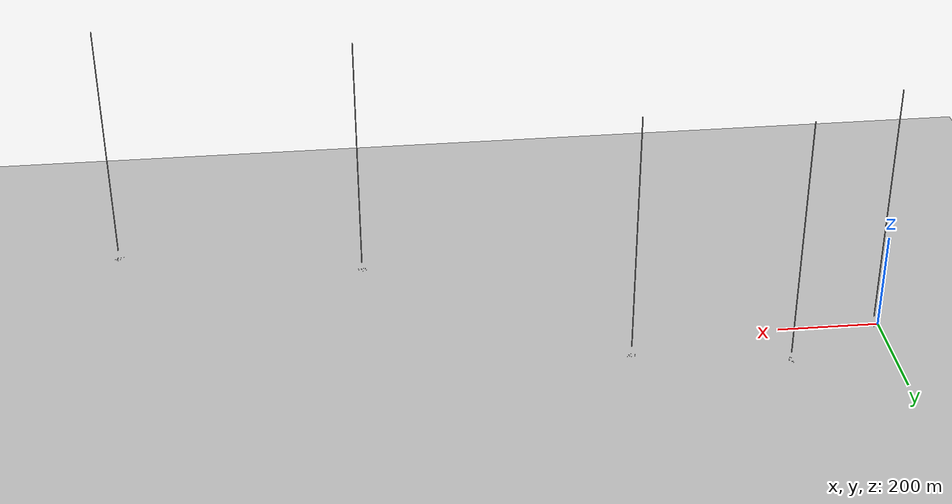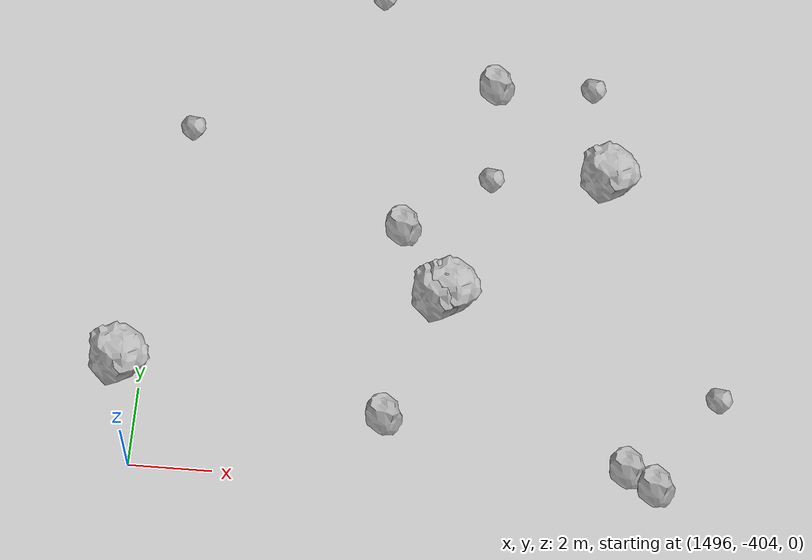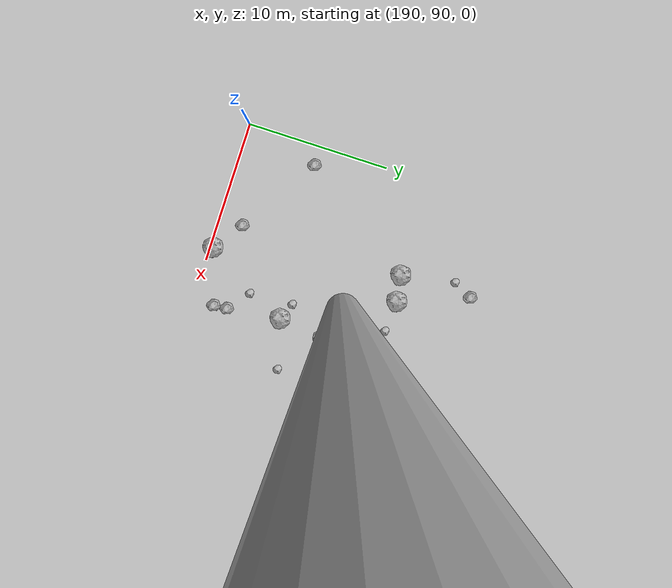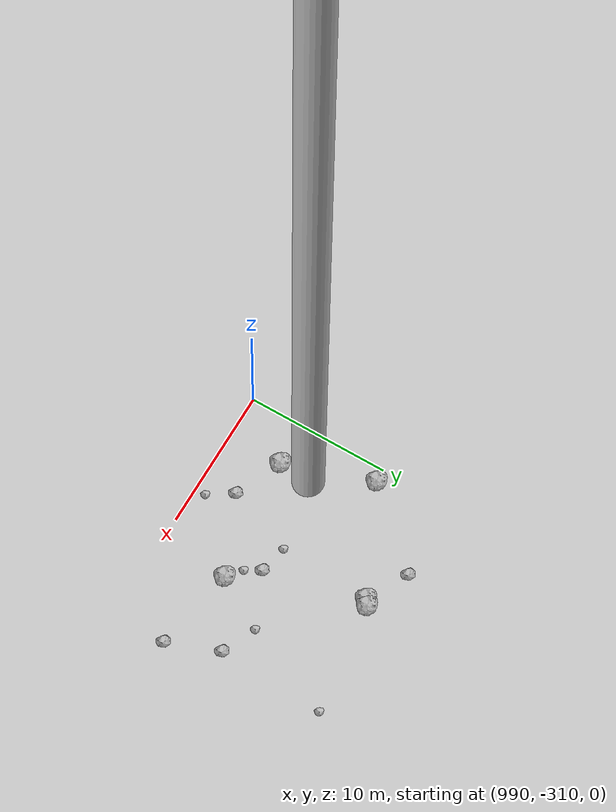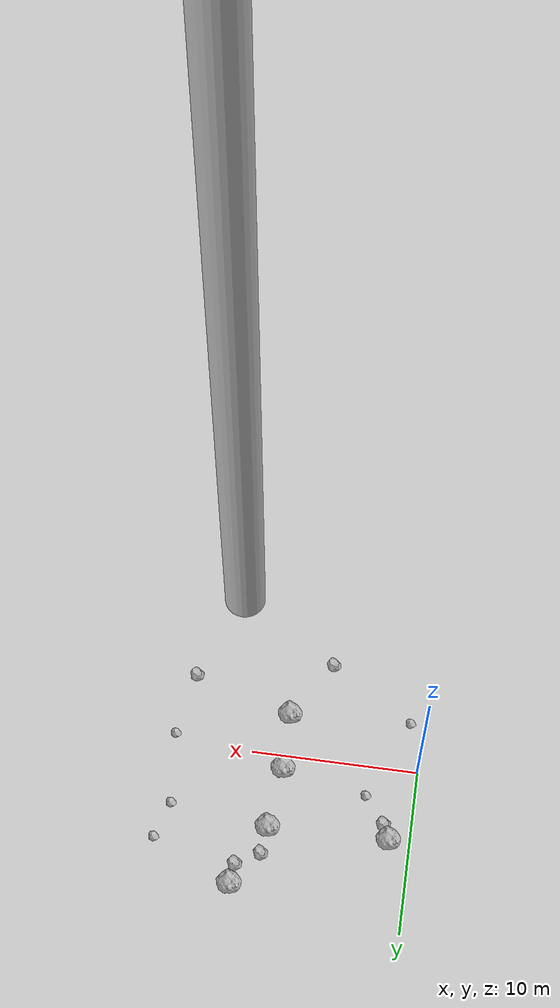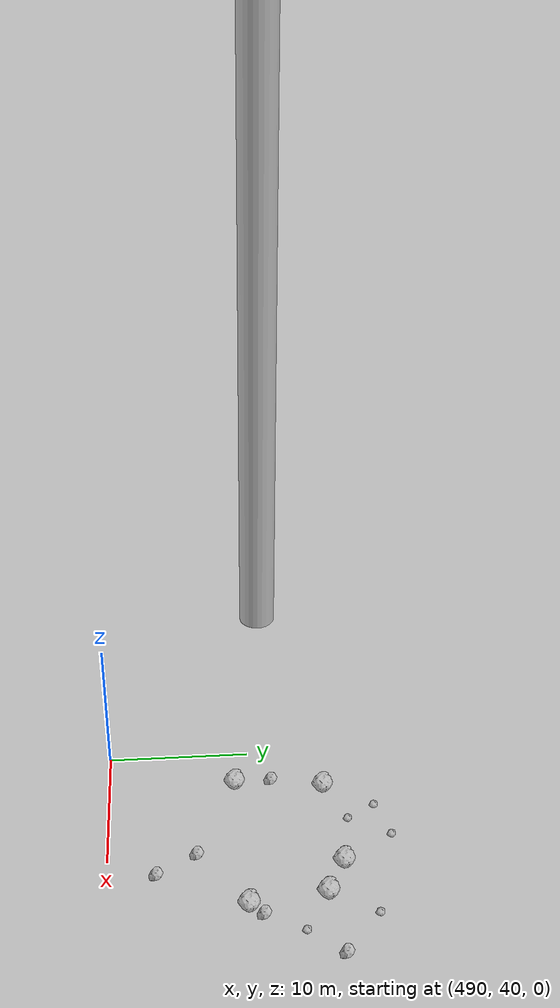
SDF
<?xml version="1.0" ?>
<sdf version="1.6">
  <world name="default">

    <include>
      <uri>model://custom_ground</uri>
    </include>

    <include>
      <uri>model://sun</uri>
    </include>

    <spherical_coordinates>
      <surface_model>EARTH_WGS84</surface_model>
      <latitude_deg>38.161479</latitude_deg>
      <longitude_deg>-122.454630</longitude_deg>
      <elevation>488.0</elevation>
      <heading_deg>90</heading_deg>
    </spherical_coordinates>

    <model name="rock1_0_0">
      <include>
        <uri>model://rock1</uri>
        <pose>10.155490656995251 8.393893590048918 0.5 0 0 0</pose>
      </include>
    </model>
    <model name="rock1_0_1">
      <include>
        <uri>model://rock1</uri>
        <pose>8.091527148625971 -2.6692993977333828 0.5 0 0 0</pose>
      </include>
    </model>
    <model name="rock1_0_2">
      <include>
        <uri>model://rock1</uri>
        <pose>8.0369894921594 0.8845151105397271 0.5 0 0 0</pose>
      </include>
    </model>
    <model name="rock1_0_3">
      <include>
        <uri>model://rock1</uri>
        <pose>8.434773560662832 4.66230148373481 0.5 0 0 0</pose>
      </include>
    </model>
    <model name="rock1_0_4">
      <include>
        <uri>model://rock1</uri>
        <pose>1.2747787272367073 4.487672842149662 0.5 0 0 0</pose>
      </include>
    </model>
    <model name="rock2_0_0">
      <include>
        <uri>model://rock2</uri>
        <pose>8.603139019240702 6.310852218176628 0.3 0 0 0</pose>
      </include>
    </model>
    <model name="rock2_0_1">
      <include>
        <uri>model://rock2</uri>
        <pose>14.1489811920622 -4.542169593200072 0.3 0 0 0</pose>
      </include>
    </model>
    <model name="rock2_0_2">
      <include>
        <uri>model://rock2</uri>
        <pose>10.011243328364582 7.149392479437807 0.3 0 0 0</pose>
      </include>
    </model>
    <model name="rock2_0_3">
      <include>
        <uri>model://rock2</uri>
        <pose>1.6575640791830892 3.5421798221672756 0.3 0 0 0</pose>
      </include>
    </model>
    <model name="rock2_0_4">
      <include>
        <uri>model://rock2</uri>
        <pose>5.8482928857719285 -6.3466763061479226 0.3 0 0 0</pose>
      </include>
    </model>
    <model name="rock3_0_0">
      <include>
        <uri>model://rock3</uri>
        <pose>14.312048951292812 3.8747714369601916 0.2 0 0 0</pose>
      </include>
    </model>
    <model name="rock3_0_1">
      <include>
        <uri>model://rock3</uri>
        <pose>14.97386050454254 6.106106462918156 0.2 0 0 0</pose>
      </include>
    </model>
    <model name="rock3_0_2">
      <include>
        <uri>model://rock3</uri>
        <pose>14.772376376121642 -0.5783622201482252 0.2 0 0 0</pose>
      </include>
    </model>
    <model name="rock3_0_3">
      <include>
        <uri>model://rock3</uri>
        <pose>0.6996136100276584 -3.153009683032053 0.2 0 0 0</pose>
      </include>
    </model>
    <model name="rock3_0_4">
      <include>
        <uri>model://rock3</uri>
        <pose>2.8771703531134896 1.8511570166252902 0.2 0 0 0</pose>
      </include>
    </model>
    <model name="rock1_1_0">
      <include>
        <uri>model://rock1</uri>
        <pose>202.78188321962807 99.49039084142987 0.5 0 0 0</pose>
      </include>
    </model>
    <model name="rock1_1_1">
      <include>
        <uri>model://rock1</uri>
        <pose>196.84023440778756 103.2578745020615 0.5 0 0 0</pose>
      </include>
    </model>
    <model name="rock1_1_2">
      <include>
        <uri>model://rock1</uri>
        <pose>198.66325139184988 103.55398911536253 0.5 0 0 0</pose>
      </include>
    </model>
    <model name="rock1_1_3">
      <include>
        <uri>model://rock1</uri>
        <pose>202.29932244257694 96.20450523776537 0.5 0 0 0</pose>
      </include>
    </model>
    <model name="rock1_1_4">
      <include>
        <uri>model://rock1</uri>
        <pose>199.0211655478731 90.2354160035004 0.5 0 0 0</pose>
      </include>
    </model>
    <model name="rock2_1_0">
      <include>
        <uri>model://rock2</uri>
        <pose>196.7912127500553 108.36366044078669 0.3 0 0 0</pose>
      </include>
    </model>
    <model name="rock2_1_1">
      <include>
        <uri>model://rock2</uri>
        <pose>191.35197359974293 95.1937976866069 0.3 0 0 0</pose>
      </include>
    </model>
    <model name="rock2_1_2">
      <include>
        <uri>model://rock2</uri>
        <pose>202.8189755252163 91.51578403023211 0.3 0 0 0</pose>
      </include>
    </model>
    <model name="rock2_1_3">
      <include>
        <uri>model://rock2</uri>
        <pose>196.89312514104978 91.70836508930844 0.3 0 0 0</pose>
      </include>
    </model>
    <model name="rock2_1_4">
      <include>
        <uri>model://rock2</uri>
        <pose>202.74002798998615 92.45814804681962 0.3 0 0 0</pose>
      </include>
    </model>
    <model name="rock3_1_0">
      <include>
        <uri>model://rock3</uri>
        <pose>201.2532144397183 93.63410110605312 0.2 0 0 0</pose>
      </include>
    </model>
    <model name="rock3_1_1">
      <include>
        <uri>model://rock3</uri>
        <pose>196.110989429347 107.02083394169796 0.2 0 0 0</pose>
      </include>
    </model>
    <model name="rock3_1_2">
      <include>
        <uri>model://rock3</uri>
        <pose>205.69301324966204 97.10004925946394 0.2 0 0 0</pose>
      </include>
    </model>
    <model name="rock3_1_3">
      <include>
        <uri>model://rock3</uri>
        <pose>200.84935125446464 103.41026671867935 0.2 0 0 0</pose>
      </include>
    </model>
    <model name="rock3_1_4">
      <include>
        <uri>model://rock3</uri>
        <pose>201.064748516513 96.68832665419559 0.2 0 0 0</pose>
      </include>
    </model>
    <model name="rock1_2_0">
      <include>
        <uri>model://rock1</uri>
        <pose>503.6637605133033 54.478339584395194 0.5 0 0 0</pose>
      </include>
    </model>
    <model name="rock1_2_1">
      <include>
        <uri>model://rock1</uri>
        <pose>501.0740530725554 55.83433092496597 0.5 0 0 0</pose>
      </include>
    </model>
    <model name="rock1_2_2">
      <include>
        <uri>model://rock1</uri>
        <pose>493.90100634310596 55.15029283520875 0.5 0 0 0</pose>
      </include>
    </model>
    <model name="rock1_2_3">
      <include>
        <uri>model://rock1</uri>
        <pose>493.190140254772 48.91054289116181 0.5 0 0 0</pose>
      </include>
    </model>
    <model name="rock1_2_4">
      <include>
        <uri>model://rock1</uri>
        <pose>504.36731818436357 49.23658005729495 0.5 0 0 0</pose>
      </include>
    </model>
    <model name="rock2_2_0">
      <include>
        <uri>model://rock2</uri>
        <pose>505.17686896706147 50.16524250484411 0.3 0 0 0</pose>
      </include>
    </model>
    <model name="rock2_2_1">
      <include>
        <uri>model://rock2</uri>
        <pose>508.57252241381315 55.07354715573391 0.3 0 0 0</pose>
      </include>
    </model>
    <model name="rock2_2_2">
      <include>
        <uri>model://rock2</uri>
        <pose>501.46872171671345 43.25082216909131 0.3 0 0 0</pose>
      </include>
    </model>
    <model name="rock2_2_3">
      <include>
        <uri>model://rock2</uri>
        <pose>499.82050297163266 46.00217085352 0.3 0 0 0</pose>
      </include>
    </model>
    <model name="rock2_2_4">
      <include>
        <uri>model://rock2</uri>
        <pose>493.0176149209585 51.51265090509648 0.3 0 0 0</pose>
      </include>
    </model>
    <model name="rock3_2_0">
      <include>
        <uri>model://rock3</uri>
        <pose>506.5874200570325 52.7682336218733 0.2 0 0 0</pose>
      </include>
    </model>
    <model name="rock3_2_1">
      <include>
        <uri>model://rock3</uri>
        <pose>495.8832990815007 58.542161456906435 0.2 0 0 0</pose>
      </include>
    </model>
    <model name="rock3_2_2">
      <include>
        <uri>model://rock3</uri>
        <pose>505.4669751382212 57.62144616935666 0.2 0 0 0</pose>
      </include>
    </model>
    <model name="rock3_2_3">
      <include>
        <uri>model://rock3</uri>
        <pose>498.73216408968375 59.376124843220836 0.2 0 0 0</pose>
      </include>
    </model>
    <model name="rock3_2_4">
      <include>
        <uri>model://rock3</uri>
        <pose>497.07936346177604 56.562077324367905 0.2 0 0 0</pose>
      </include>
    </model>
    <model name="rock1_3_0">
      <include>
        <uri>model://rock1</uri>
        <pose>1001.8687929250817 -305.1293634398295 0.5 0 0 0</pose>
      </include>
    </model>
    <model name="rock1_3_1">
      <include>
        <uri>model://rock1</uri>
        <pose>991.0398478773591 -299.9524364469573 0.5 0 0 0</pose>
      </include>
    </model>
    <model name="rock1_3_2">
      <include>
        <uri>model://rock1</uri>
        <pose>998.8739110349338 -296.1411992935682 0.5 0 0 0</pose>
      </include>
    </model>
    <model name="rock1_3_3">
      <include>
        <uri>model://rock1</uri>
        <pose>998.5033244747901 -296.42893243196846 0.5 0 0 0</pose>
      </include>
    </model>
    <model name="rock1_3_4">
      <include>
        <uri>model://rock1</uri>
        <pose>993.1720235854131 -306.0861004850443 0.5 0 0 0</pose>
      </include>
    </model>
    <model name="rock2_3_0">
      <include>
        <uri>model://rock2</uri>
        <pose>1006.2564364028232 -302.6321979754509 0.3 0 0 0</pose>
      </include>
    </model>
    <model name="rock2_3_1">
      <include>
        <uri>model://rock2</uri>
        <pose>1000.143955138838 -303.244158063008 0.3 0 0 0</pose>
      </include>
    </model>
    <model name="rock2_3_2">
      <include>
        <uri>model://rock2</uri>
        <pose>1007.6343451023014 -306.23025085533067 0.3 0 0 0</pose>
      </include>
    </model>
    <model name="rock2_3_3">
      <include>
        <uri>model://rock2</uri>
        <pose>996.3974862764492 -307.5116445293169 0.3 0 0 0</pose>
      </include>
    </model>
    <model name="rock2_3_4">
      <include>
        <uri>model://rock2</uri>
        <pose>995.5505422318017 -294.89878774802247 0.3 0 0 0</pose>
      </include>
    </model>
    <model name="rock3_3_0">
      <include>
        <uri>model://rock3</uri>
        <pose>1000.7521564168132 -304.33401861480695 0.2 0 0 0</pose>
      </include>
    </model>
    <model name="rock3_3_1">
      <include>
        <uri>model://rock3</uri>
        <pose>1006.553755258349 -295.19605776730407 0.2 0 0 0</pose>
      </include>
    </model>
    <model name="rock3_3_2">
      <include>
        <uri>model://rock3</uri>
        <pose>998.1591363021603 -302.8547925754902 0.2 0 0 0</pose>
      </include>
    </model>
    <model name="rock3_3_3">
      <include>
        <uri>model://rock3</uri>
        <pose>997.4959839148572 -309.2420819274356 0.2 0 0 0</pose>
      </include>
    </model>
    <model name="rock3_3_4">
      <include>
        <uri>model://rock3</uri>
        <pose>1003.8735239722292 -301.5961527535835 0.2 0 0 0</pose>
      </include>
    </model>
    <model name="rock1_4_0">
      <include>
        <uri>model://rock1</uri>
        <pose>1506.9499550937114 -395.51308585763735 0.5 0 0 0</pose>
      </include>
    </model>
    <model name="rock1_4_1">
      <include>
        <uri>model://rock1</uri>
        <pose>1490.5948653711998 -401.62426566366065 0.5 0 0 0</pose>
      </include>
    </model>
    <model name="rock1_4_2">
      <include>
        <uri>model://rock1</uri>
        <pose>1503.0680438242046 -399.0874688076617 0.5 0 0 0</pose>
      </include>
    </model>
    <model name="rock1_4_3">
      <include>
        <uri>model://rock1</uri>
        <pose>1495.4942485419638 -401.3593869917928 0.5 0 0 0</pose>
      </include>
    </model>
    <model name="rock1_4_4">
      <include>
        <uri>model://rock1</uri>
        <pose>1503.2761579838884 -398.96952761317107 0.5 0 0 0</pose>
      </include>
    </model>
    <model name="rock2_4_0">
      <include>
        <uri>model://rock2</uri>
        <pose>1501.9690539349958 -397.231094316455 0.3 0 0 0</pose>
      </include>
    </model>
    <model name="rock2_4_1">
      <include>
        <uri>model://rock2</uri>
        <pose>1508.46658597445 -403.6595300950899 0.3 0 0 0</pose>
      </include>
    </model>
    <model name="rock2_4_2">
      <include>
        <uri>model://rock2</uri>
        <pose>1503.9685791664199 -393.07336894816433 0.3 0 0 0</pose>
      </include>
    </model>
    <model name="rock2_4_3">
      <include>
        <uri>model://rock2</uri>
        <pose>1501.9360944415203 -402.3168316613174 0.3 0 0 0</pose>
      </include>
    </model>
    <model name="rock2_4_4">
      <include>
        <uri>model://rock2</uri>
        <pose>1507.7858177028952 -403.2448749727308 0.3 0 0 0</pose>
      </include>
    </model>
    <model name="rock3_4_0">
      <include>
        <uri>model://rock3</uri>
        <pose>1500.9337891801342 -390.6998594100921 0.2 0 0 0</pose>
      </include>
    </model>
    <model name="rock3_4_1">
      <include>
        <uri>model://rock3</uri>
        <pose>1506.3907360481035 -393.0181005097955 0.2 0 0 0</pose>
      </include>
    </model>
    <model name="rock3_4_2">
      <include>
        <uri>model://rock3</uri>
        <pose>1509.860319715383 -401.3208719696805 0.2 0 0 0</pose>
      </include>
    </model>
    <model name="rock3_4_3">
      <include>
        <uri>model://rock3</uri>
        <pose>1496.5033636167725 -394.8661940019821 0.2 0 0 0</pose>
      </include>
    </model>
    <model name="rock3_4_4">
      <include>
        <uri>model://rock3</uri>
        <pose>1504.0227188235306 -395.7660504919539 0.2 0 0 0</pose>
      </include>
    </model>

    <model name="cylinder_1">
      <static>true</static>
      <link name="link">
        <visual name="visual">
          <geometry>
            <cylinder>
              <radius>1</radius>
              <length>500</length>
            </cylinder>
          </geometry>
        </visual>
      </link>
      <pose>10 0 270 0 0 0</pose>
    </model>

    <model name="cylinder_2">
      <static>true</static>
      <link name="link">
        <visual name="visual">
          <geometry>
            <cylinder>
              <radius>1</radius>
              <length>500</length>
            </cylinder>
          </geometry>
        </visual>
      </link>
      <pose>200 100 270 0 0 0</pose>
    </model>

    <model name="cylinder_3">
      <static>true</static>
      <link name="link">
        <visual name="visual">
          <geometry>
            <cylinder>
              <radius>1</radius>
              <length>500</length>
            </cylinder>
          </geometry>
        </visual>
      </link>
      <pose>500 50 270 0 0 0</pose>
    </model>

    <model name="cylinder_4">
      <static>true</static>
      <link name="link">
        <visual name="visual">
          <geometry>
            <cylinder>
              <radius>1</radius>
              <length>500</length>
            </cylinder>
          </geometry>
        </visual>
      </link>
      <pose>1000 -300 270 0 0 0</pose>
    </model>

    <model name="cylinder_5">
      <static>true</static>
      <link name="link">
        <visual name="visual">
          <geometry>
            <cylinder>
              <radius>1</radius>
              <length>500</length>
            </cylinder>
          </geometry>
        </visual>
      </link>
      <pose>1500 -400 270 0 0 0</pose>
    </model>

  </world>
</sdf>

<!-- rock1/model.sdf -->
<sdf version="1.6">
  <model name="rock1">
    <static>true</static> <!-- Set to true if the model should not move -->
    <pose>0 0 0 0 0 0</pose>

    <!--z offset is 0.5 for full scale-->

    <link name="link">
      <collision name="rock1_collision">
        <geometry>
          <mesh>
            <uri>model://meshes/rock1.dae</uri>
          </mesh>
        </geometry>
      </collision>
      <visual name="rock1_visual">
        <geometry>
          <mesh>
            <uri>model://meshes/rock1.dae</uri>
          </mesh>
        </geometry>
        <material>
          <script>
            <uri>model://materials/scripts/sand_pebbles.material</uri>
            <name>custom_ground/Image</name>
          </script>
        </material>
      </visual>
    </link>
  </model>
</sdf>

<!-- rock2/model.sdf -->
<sdf version="1.6">
  <model name="rock2">
    <static>true</static> <!-- Set to true if the model should not move -->
    <pose>0 0 0 0 0 0</pose>

    <!--z offset is 0.3 for full scale-->

    <link name="link">
      <collision name="rock2_collision">
        <geometry>
          <mesh>
            <uri>model://meshes/rock2.dae</uri>
          </mesh>
        </geometry>
      </collision>
      <visual name="rock2_visual">
        <geometry>
          <mesh>
            <uri>model://meshes/rock2.dae</uri>
          </mesh>
        </geometry>
        <material>
          <script>
            <uri>model://materials/scripts/sand_pebbles.material</uri>
            <name>custom_ground/Image</name>
          </script>
        </material>
      </visual>
    </link>
  </model>
</sdf>

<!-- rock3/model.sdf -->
<sdf version="1.6">
  <model name="rock3">
    <static>true</static> <!-- Set to true if the model should not move -->
    <pose>0 0 0 0 0 0</pose>

    <!--z offset is 0.2 for full scale-->

    <link name="link">
      <collision name="rock3_collision">
        <geometry>
          <mesh>
            <uri>model://meshes/rock3.dae</uri>
          </mesh>
        </geometry>
      </collision>
      <visual name="rock3_visual">
        <geometry>
          <mesh>
            <uri>model://meshes/rock3.dae</uri>
          </mesh>
        </geometry>
        <material>
          <script>
            <uri>model://materials/scripts/sand_pebbles.material</uri>
            <name>custom_ground/Image</name>
          </script>
        </material>
      </visual>
    </link>
  </model>
</sdf>

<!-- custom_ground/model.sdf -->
<sdf version="1.6">
  <model name="custom_ground">
    <static>true</static> <!-- Ground is static and immovable -->
    <link name="ground_link">
      <pose>240 0 0 0 0 0</pose> <!-- Position and orientation relative to the world -->
      <!-- Visual Representation -->
      <visual name="ground_visual">
        <geometry>
          <plane>
            <normal>0 0 1</normal> <!-- Upward facing plane -->
            <size>500 500</size> <!-- Size of the plane -->
          </plane>
        </geometry>
        <material>
          <script>
            <uri>model://materials/scripts/sand_pebbles.material</uri>
            <name>custom_ground/Image</name>
          </script>
        </material>
      </visual>

      <!-- Collision Representation -->
      <collision name="ground_collision">
        <geometry>
          <plane>
            <normal>0 0 1</normal>
            <size>100 100</size>
          </plane>
        </geometry>
      </collision>

    </link>
  </model>
</sdf>
